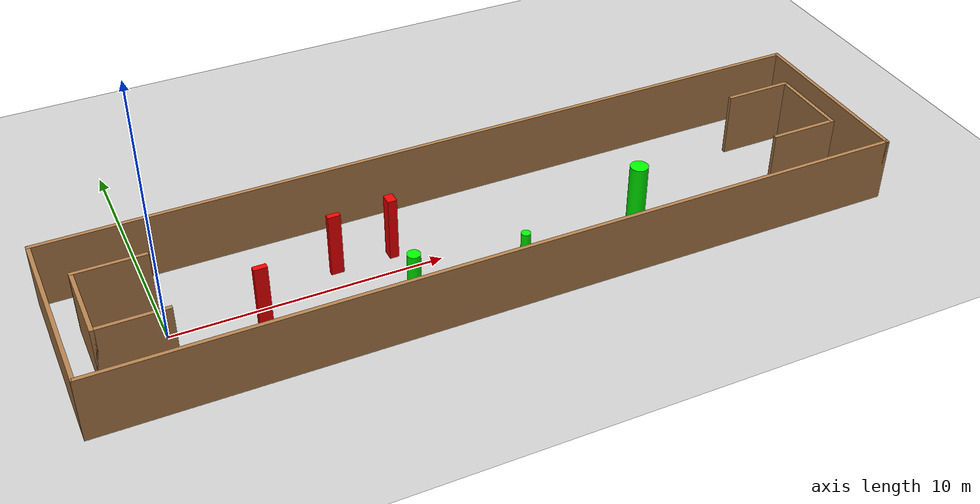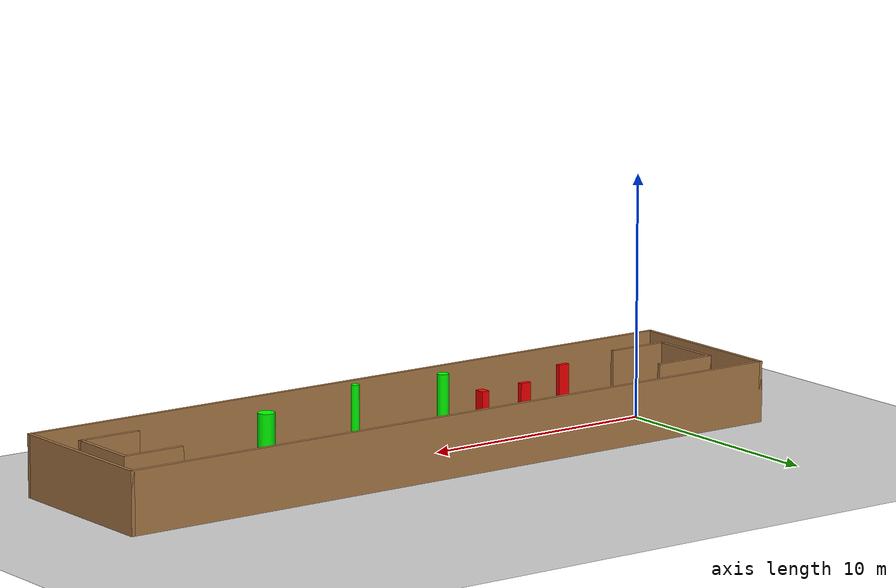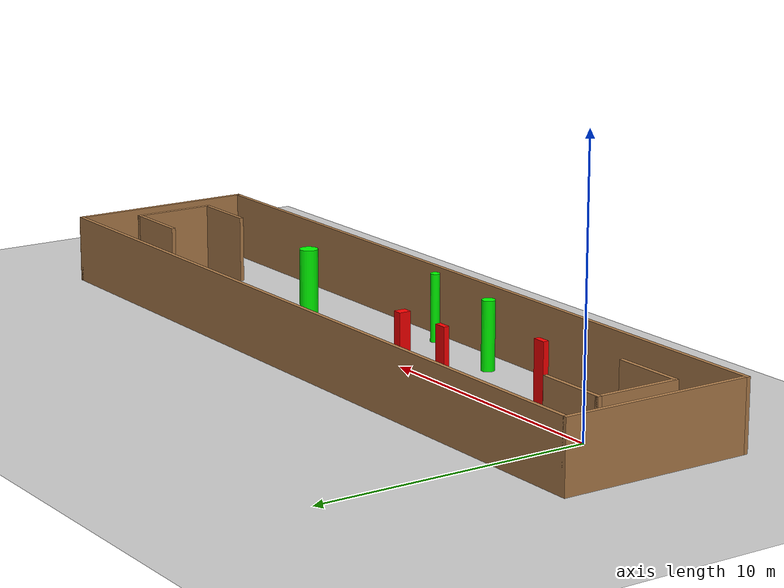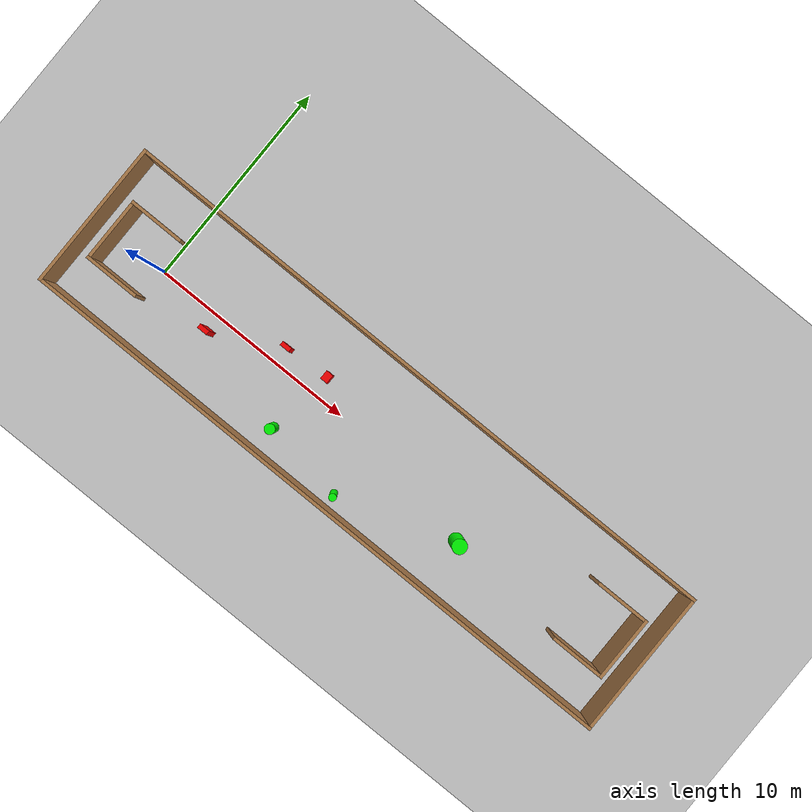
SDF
<sdf version="1.7">
 <world name="default">
  <light name="sun" type="directional">
   <pose>0 0 10 0 -0 0</pose>
   <diffuse>0.8 0.8 0.8 1</diffuse>
   <specular>0.2 0.2 0.2 1</specular>
   <attenuation>
    <range>1000</range>
    <constant>0.9</constant>
    <linear>0.01</linear>
    <quadratic>0.001</quadratic>
   </attenuation>
   <direction>-0.5 0.1 -0.9</direction>
   <spot><inner_angle>0</inner_angle><outer_angle>0</outer_angle><falloff>0</falloff></spot>
  </light>
  <model name="ground_plane">
   <static>1</static>
   <link name="link">
    <collision name="collision">
     <geometry><plane><normal>0 0 1</normal><size>100 100</size></plane></geometry>
     <surface>
      <contact><collide_bitmask>65535</collide_bitmask></contact>
      <friction><ode><mu>100</mu><mu2>50</mu2></ode></friction>
     </surface>
    </collision>
    <visual name="visual">
     <cast_shadows>0</cast_shadows>
     <geometry><plane><normal>0 0 1</normal><size>100 100</size></plane></geometry>
     <material>
      <script><uri>file://media/materials/scripts/gazebo.material</uri><name>Gazebo/Grey</name></script>
     </material>
    </visual>
   </link>
  </model>
  <gravity>0 0 -9.8</gravity>
  <magnetic_field>6e-06 2.3e-05 -4.2e-05</magnetic_field>
  <atmosphere type="adiabatic"/>
  <physics type="ode">
   <max_step_size>0.001</max_step_size>
   <real_time_factor>1</real_time_factor>
   <real_time_update_rate>1000</real_time_update_rate>
  </physics>
  <scene><ambient>0.4 0.4 0.4 1</ambient><background>0.7 0.7 0.7 1</background><shadows>1</shadows></scene>
  <spherical_coordinates>
   <surface_model>EARTH_WGS84</surface_model>
   <latitude_deg>0</latitude_deg>
   <longitude_deg>0</longitude_deg>
   <elevation>0</elevation>
   <heading_deg>0</heading_deg>
  </spherical_coordinates>
  <model name="my_base_walls">
   <link name="Wall_0">
    <collision name="Wall_0_Collision">
     <geometry><box><size>7.15 0.15 2.5</size></box></geometry>
     <pose>0 0 1.25 0 -0 0</pose>
    </collision>
    <visual name="Wall_0_Visual">
     <pose>0 0 1.25 0 -0 0</pose>
     <geometry><box><size>7.15 0.15 2.5</size></box></geometry>
     <material>
      <script><uri>file://media/materials/scripts/gazebo.material</uri><name>Gazebo/Wood</name></script>
      <ambient>1 1 1 1</ambient>
     </material>
     <meta><layer>0</layer></meta>
    </visual>
    <pose>-15 0 0 0 -0 1.5708</pose>
   </link>
   <link name="Wall_10">
    <collision name="Wall_10_Collision">
     <geometry><box><size>2.65 0.15 2.5</size></box></geometry>
     <pose>0 0 1.25 0 -0 0</pose>
    </collision>
    <visual name="Wall_10_Visual">
     <pose>0 0 1.25 0 -0 0</pose>
     <geometry><box><size>2.65 0.15 2.5</size></box></geometry>
     <material>
      <script><uri>file://media/materials/scripts/gazebo.material</uri><name>Gazebo/Wood</name></script>
      <ambient>1 1 1 1</ambient>
     </material>
     <meta><layer>0</layer></meta>
    </visual>
    <pose>-12.75 -1.5 0 0 -0 0</pose>
   </link>
   <link name="Wall_12">
    <collision name="Wall_12_Collision">
     <geometry><box><size>2.65 0.15 2.5</size></box></geometry>
     <pose>0 0 1.25 0 -0 0</pose>
    </collision>
    <visual name="Wall_12_Visual">
     <pose>0 0 1.25 0 -0 0</pose>
     <geometry><box><size>2.65 0.15 2.5</size></box></geometry>
     <material>
      <script><uri>file://media/materials/scripts/gazebo.material</uri><name>Gazebo/Wood</name></script>
      <ambient>1 1 1 1</ambient>
     </material>
     <meta><layer>0</layer></meta>
    </visual>
    <pose>-12.75 1.5 0 0 -0 0</pose>
   </link>
   <link name="Wall_14">
    <collision name="Wall_14_Collision">
     <geometry><box><size>3.15 0.15 2.5</size></box></geometry>
     <pose>0 0 1.25 0 -0 0</pose>
    </collision>
    <visual name="Wall_14_Visual">
     <pose>0 0 1.25 0 -0 0</pose>
     <geometry><box><size>3.15 0.15 2.5</size></box></geometry>
     <material>
      <script><uri>file://media/materials/scripts/gazebo.material</uri><name>Gazebo/Wood</name></script>
      <ambient>1 1 1 1</ambient>
     </material>
     <meta><layer>0</layer></meta>
    </visual>
    <pose>14 0 0 0 -0 -1.5708</pose>
   </link>
   <link name="Wall_15">
    <collision name="Wall_15_Collision">
     <geometry><box><size>2.65 0.15 2.5</size></box></geometry>
     <pose>0 0 1.25 0 -0 0</pose>
    </collision>
    <visual name="Wall_15_Visual">
     <pose>0 0 1.25 0 -0 0</pose>
     <geometry><box><size>2.65 0.15 2.5</size></box></geometry>
     <material>
      <script><uri>file://media/materials/scripts/gazebo.material</uri><name>Gazebo/Wood</name></script>
      <ambient>1 1 1 1</ambient>
     </material>
     <meta><layer>0</layer></meta>
    </visual>
    <pose>12.75 -1.5 0 0 -0 3.14159</pose>
   </link>
   <link name="Wall_17">
    <collision name="Wall_17_Collision">
     <geometry><box><size>2.65 0.15 2.5</size></box></geometry>
     <pose>0 0 1.25 0 -0 0</pose>
    </collision>
    <visual name="Wall_17_Visual">
     <pose>0 0 1.25 0 -0 0</pose>
     <geometry><box><size>2.65 0.15 2.5</size></box></geometry>
     <material>
      <script><uri>file://media/materials/scripts/gazebo.material</uri><name>Gazebo/Wood</name></script>
      <ambient>1 1 1 1</ambient>
     </material>
     <meta><layer>0</layer></meta>
    </visual>
    <pose>12.75 1.5 0 0 -0 3.14159</pose>
   </link>
   <link name="Wall_2">
    <collision name="Wall_2_Collision">
     <geometry><box><size>30.15 0.15 2.5</size></box></geometry>
     <pose>0 0 1.25 0 -0 0</pose>
    </collision>
    <visual name="Wall_2_Visual">
     <pose>0 0 1.25 0 -0 0</pose>
     <geometry><box><size>30.15 0.15 2.5</size></box></geometry>
     <material>
      <script><uri>file://media/materials/scripts/gazebo.material</uri><name>Gazebo/Wood</name></script>
      <ambient>1 1 1 1</ambient>
     </material>
     <meta><layer>0</layer></meta>
    </visual>
    <pose>-0 -3.5 0 0 -0 0</pose>
   </link>
   <link name="Wall_4">
    <collision name="Wall_4_Collision">
     <geometry><box><size>30.15 0.15 2.5</size></box></geometry>
     <pose>0 0 1.25 0 -0 0</pose>
    </collision>
    <visual name="Wall_4_Visual">
     <pose>0 0 1.25 0 -0 0</pose>
     <geometry><box><size>30.15 0.15 2.5</size></box></geometry>
     <material>
      <script><uri>file://media/materials/scripts/gazebo.material</uri><name>Gazebo/Wood</name></script>
      <ambient>1 1 1 1</ambient>
     </material>
     <meta><layer>0</layer></meta>
    </visual>
    <pose>-0 3.5 0 0 -0 0</pose>
   </link>
   <link name="Wall_6">
    <collision name="Wall_6_Collision">
     <geometry><box><size>7.15 0.15 2.5</size></box></geometry>
     <pose>0 0 1.25 0 -0 0</pose>
    </collision>
    <visual name="Wall_6_Visual">
     <pose>0 0 1.25 0 -0 0</pose>
     <geometry><box><size>7.15 0.15 2.5</size></box></geometry>
     <material>
      <script><uri>file://media/materials/scripts/gazebo.material</uri><name>Gazebo/Wood</name></script>
      <ambient>1 1 1 1</ambient>
     </material>
     <meta><layer>0</layer></meta>
    </visual>
    <pose>15 0 0 0 -0 -1.5708</pose>
   </link>
   <link name="Wall_9">
    <collision name="Wall_9_Collision">
     <geometry><box><size>3.15 0.15 2.5</size></box></geometry>
     <pose>0 0 1.25 0 -0 0</pose>
    </collision>
    <visual name="Wall_9_Visual">
     <pose>0 0 1.25 0 -0 0</pose>
     <geometry><box><size>3.15 0.15 2.5</size></box></geometry>
     <material>
      <script><uri>file://media/materials/scripts/gazebo.material</uri><name>Gazebo/Wood</name></script>
      <ambient>1 1 1 1</ambient>
     </material>
     <meta><layer>0</layer></meta>
    </visual>
    <pose>-14 0 0 0 -0 -1.5708</pose>
   </link>
   <static>1</static>
   <pose>11.5 0 0 0 -0 0</pose>
  </model>
  <model name="cylinder1">
   <static>1</static>
   <link name="link">
    <inertial>
     <mass>1</mass>
     <inertia><ixx>0.5</ixx><ixy>0</ixy><ixz>0</ixz><iyy>0.5</iyy><iyz>0</iyz><izz>1</izz></inertia>
    </inertial>
    <collision name="collision">
     <geometry><cylinder><radius>0.3428733181276547</radius><length>2.5</length></cylinder></geometry>
    </collision>
    <visual name="visual">
     <geometry><cylinder><radius>0.3428733181276547</radius><length>2.5</length></cylinder></geometry>
     <material>
      <ambient>0 1 0 1</ambient>
      <diffuse>0 1 0 1</diffuse>
      <specular>0.1 0.1 0.1 1</specular>
      <emissive>0 0 0 0</emissive>
     </material>
    </visual>
   </link>
   <pose>17.389106591337892 -1.0282623184471138 1.25 0 0 0</pose>
  </model>
  <model name="cylinder2">
   <static>1</static>
   <link name="link">
    <inertial>
     <mass>1</mass>
     <inertia><ixx>0.5</ixx><ixy>0</ixy><ixz>0</ixz><iyy>0.5</iyy><iyz>0</iyz><izz>1</izz></inertia>
    </inertial>
    <collision name="collision">
     <geometry><cylinder><radius>0.24135561587059046</radius><length>2.5</length></cylinder></geometry>
    </collision>
    <visual name="visual">
     <geometry><cylinder><radius>0.24135561587059046</radius><length>2.5</length></cylinder></geometry>
     <material>
      <ambient>0 1 0 1</ambient>
      <diffuse>0 1 0 1</diffuse>
      <specular>0.1 0.1 0.1 1</specular>
      <emissive>0 0 0 0</emissive>
     </material>
    </visual>
   </link>
   <pose>8.026384879294566 -2.2650150033468224 1.25 0 0 0</pose>
  </model>
  <model name="cylinder3">
   <static>1</static>
   <link name="link">
    <inertial>
     <mass>1</mass>
     <inertia><ixx>0.5</ixx><ixy>0</ixy><ixz>0</ixz><iyy>0.5</iyy><iyz>0</iyz><izz>1</izz></inertia>
    </inertial>
    <collision name="collision">
     <geometry><cylinder><radius>0.17270949748340542</radius><length>2.5</length></cylinder></geometry>
    </collision>
    <visual name="visual">
     <geometry><cylinder><radius>0.17270949748340542</radius><length>2.5</length></cylinder></geometry>
     <material>
      <ambient>0 1 0 1</ambient>
      <diffuse>0 1 0 1</diffuse>
      <specular>0.1 0.1 0.1 1</specular>
      <emissive>0 0 0 0</emissive>
     </material>
    </visual>
   </link>
   <pose>11.912784472125246 -2.816728968134414 1.25 0 0 0</pose>
  </model>
  <model name="box1">
   <static>1</static>
   <link name="link">
    <inertial>
     <mass>1</mass>
     <inertia><ixx>0.083</ixx><ixy>0</ixy><ixz>0</ixz><iyy>0.083</iyy><iyz>0</iyz><izz>0.083</izz></inertia>
    </inertial>
    <collision name="collision">
     <geometry><box><size>0.4908870416452157 0.21286891624362148 2.5</size></box></geometry>
    </collision>
    <visual name="visual">
     <geometry><box><size>0.4908870416452157 0.21286891624362148 2.5</size></box></geometry>
     <material>
      <ambient>1 0 0 1</ambient>
      <diffuse>1 0 0 1</diffuse>
      <specular>0.1 0.1 0.1 1</specular>
      <emissive>0 0 0 0</emissive>
     </material>
    </visual>
    <sensor name="my_contact" type="contact">
     <contact><collision>box_collision</collision><topic>__default_topic__</topic></contact>
    </sensor>
   </link>
   <pose>3.1831628584120306 -0.7723307470351144 1.25 0 0 0</pose>
  </model>
  <model name="box2">
   <static>1</static>
   <link name="link">
    <inertial>
     <mass>1</mass>
     <inertia><ixx>0.083</ixx><ixy>0</ixy><ixz>0</ixz><iyy>0.083</iyy><iyz>0</iyz><izz>0.083</izz></inertia>
    </inertial>
    <collision name="collision">
     <geometry><box><size>0.34210880808020355 0.4325335750377494 2.5</size></box></geometry>
    </collision>
    <visual name="visual">
     <geometry><box><size>0.34210880808020355 0.4325335750377494 2.5</size></box></geometry>
     <material>
      <ambient>1 0 0 1</ambient>
      <diffuse>1 0 0 1</diffuse>
      <specular>0.1 0.1 0.1 1</specular>
      <emissive>0 0 0 0</emissive>
     </material>
    </visual>
    <sensor name="my_contact" type="contact">
     <contact><collision>box_collision</collision><topic>__default_topic__</topic></contact>
    </sensor>
   </link>
   <pose>8.497550947553357 0.9675440341625468 1.25 0 0 0</pose>
  </model>
  <model name="box3">
   <static>1</static>
   <link name="link">
    <inertial>
     <mass>1</mass>
     <inertia><ixx>0.083</ixx><ixy>0</ixy><ixz>0</ixz><iyy>0.083</iyy><iyz>0</iyz><izz>0.083</izz></inertia>
    </inertial>
    <collision name="collision">
     <geometry><box><size>0.4745242123719012 0.2027984076504729 2.5</size></box></geometry>
    </collision>
    <visual name="visual">
     <geometry><box><size>0.4745242123719012 0.2027984076504729 2.5</size></box></geometry>
     <material>
      <ambient>1 0 0 1</ambient>
      <diffuse>1 0 0 1</diffuse>
      <specular>0.1 0.1 0.1 1</specular>
      <emissive>0 0 0 0</emissive>
     </material>
    </visual>
    <sensor name="my_contact" type="contact">
     <contact><collision>box_collision</collision><topic>__default_topic__</topic></contact>
    </sensor>
   </link>
   <pose>6.345275186931799 0.86685541670502 1.25 0 0 0</pose>
  </model>
 </world>
</sdf>
